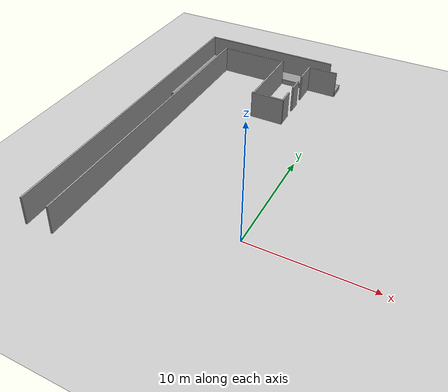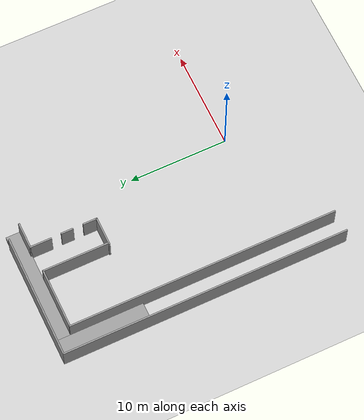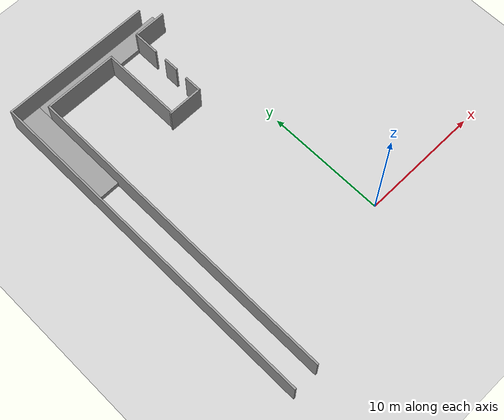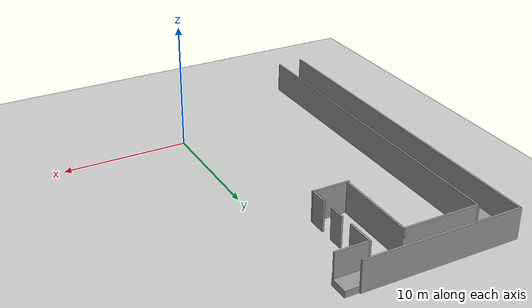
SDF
<sdf version="1.6">
 <world name="default">
  <model name="ground_plane">
   <static>1</static>
   <link name="link">
    <collision name="collision">
     <geometry><plane><normal>0 0 1</normal><size>100 100</size></plane></geometry>
     <surface><friction><ode><mu>100</mu><mu2>50</mu2></ode></friction></surface>
    </collision>
    <visual name="visual">
     <cast_shadows>0</cast_shadows>
     <geometry><plane><normal>0 0 1</normal><size>100 100</size></plane></geometry>
     <material>
      <script><uri>file://media/materials/scripts/gazebo.material</uri><name>Gazebo/Grey</name></script>
     </material>
    </visual>
   </link>
  </model>
  <model name="HRI_MAP">
   <pose>-5.86756 7.56266 0 0 -0 0</pose>
   <link name="Stairs_6">
    <visual name="Stairs_6_Visual_0">
     <pose>-7.41654 11.2877 0.25 0 -0 0</pose>
     <geometry><box><size>2.21745 8.93941 0.5</size></box></geometry>
     <material>
      <script><uri>file://media/materials/scripts/gazebo.material</uri><name>Gazebo/Grey</name></script>
      <ambient>1 1 1 1</ambient>
     </material>
    </visual>
    <collision name="Stairs_6_Collision_0">
     <geometry><box><size>2.21745 8.93941 0.5</size></box></geometry>
     <pose>-7.41654 11.2877 0.25 0 -0 0</pose>
    </collision>
   </link>
   <link name="Stairs_8">
    <visual name="Stairs_8_Visual_0">
     <pose>-0.516707 15.0306 0.25 0 -0 0</pose>
     <geometry><box><size>11.616 1.524 0.5</size></box></geometry>
     <material>
      <script><uri>file://media/materials/scripts/gazebo.material</uri><name>Gazebo/Grey</name></script>
      <ambient>1 1 1 1</ambient>
     </material>
    </visual>
    <collision name="Stairs_8_Collision_0">
     <geometry><box><size>11.616 1.524 0.5</size></box></geometry>
     <pose>-0.516707 15.0306 0.25 0 -0 0</pose>
    </collision>
   </link>
   <link name="Wall_25">
    <collision name="Wall_25_Collision">
     <geometry><box><size>29.25 0.15 2.5</size></box></geometry>
     <pose>0 0 1.25 0 -0 0</pose>
    </collision>
    <visual name="Wall_25_Visual">
     <pose>0 0 1.25 0 -0 0</pose>
     <geometry><box><size>29.25 0.15 2.5</size></box></geometry>
     <material>
      <script><uri>file://media/materials/scripts/gazebo.material</uri><name>Gazebo/Grey</name></script>
      <ambient>1 1 1 1</ambient>
     </material>
    </visual>
    <pose>-8.49624 1.26988 0 0 -0 1.5708</pose>
   </link>
   <link name="Wall_27">
    <collision name="Wall_27_Collision">
     <geometry><box><size>27.5 0.15 2.5</size></box></geometry>
     <pose>0 0 1.25 0 -0 0</pose>
    </collision>
    <visual name="Wall_27_Visual">
     <pose>0 0 1.25 0 -0 0</pose>
     <geometry><box><size>27.5 0.15 2.5</size></box></geometry>
     <material>
      <script><uri>file://media/materials/scripts/gazebo.material</uri><name>Gazebo/Grey</name></script>
      <ambient>1 1 1 1</ambient>
     </material>
    </visual>
    <pose>-6.25376 0.512244 0 0 -0 1.5708</pose>
   </link>
   <link name="Wall_29">
    <collision name="Wall_29_Collision">
     <geometry><box><size>6.25 0.15 2.5</size></box></geometry>
     <pose>0 0 1.25 0 -0 0</pose>
    </collision>
    <visual name="Wall_29_Visual">
     <pose>0 0 1.25 0 -0 0</pose>
     <geometry><box><size>6.25 0.15 2.5</size></box></geometry>
     <material>
      <script><uri>file://media/materials/scripts/gazebo.material</uri><name>Gazebo/Grey</name></script>
      <ambient>1 1 1 1</ambient>
     </material>
    </visual>
    <pose>-3.20376 14.1872 0 0 -0 0</pose>
   </link>
   <link name="Wall_30">
    <collision name="Wall_30_Collision">
     <geometry><box><size>6.75 0.15 2.5</size></box></geometry>
     <pose>0 0 1.25 0 -0 0</pose>
    </collision>
    <visual name="Wall_30_Visual">
     <pose>0 0 1.25 0 -0 0</pose>
     <geometry><box><size>6.75 0.15 2.5</size></box></geometry>
     <material>
      <script><uri>file://media/materials/scripts/gazebo.material</uri><name>Gazebo/Grey</name></script>
      <ambient>1 1 1 1</ambient>
     </material>
    </visual>
    <pose>-0.153764 10.8872 0 0 0 -1.5708</pose>
   </link>
   <link name="Wall_32">
    <collision name="Wall_32_Collision">
     <geometry><box><size>12.75 0.15 2.5</size></box></geometry>
     <pose>0 0 1.25 0 -0 0</pose>
    </collision>
    <visual name="Wall_32_Visual">
     <pose>0 0 1.25 0 -0 0</pose>
     <geometry><box><size>12.75 0.15 2.5</size></box></geometry>
     <material>
      <script><uri>file://media/materials/scripts/gazebo.material</uri><name>Gazebo/Grey</name></script>
      <ambient>1 1 1 1</ambient>
     </material>
    </visual>
    <pose>-2.19624 15.8199 0 0 -0 0</pose>
   </link>
   <link name="Wall_34">
    <collision name="Wall_34_Collision">
     <geometry><box><size>2.25 0.15 2.5</size></box></geometry>
     <pose>0 0 1.25 0 -0 0</pose>
    </collision>
    <visual name="Wall_34_Visual">
     <pose>0 0 1.25 0 -0 0</pose>
     <geometry><box><size>2.25 0.15 2.5</size></box></geometry>
     <material>
      <script><uri>file://media/materials/scripts/gazebo.material</uri><name>Gazebo/Grey</name></script>
      <ambient>1 1 1 1</ambient>
     </material>
    </visual>
    <pose>2.5624 13.2711 0 0 0 -1.5708</pose>
   </link>
   <link name="Wall_36">
    <collision name="Wall_36_Collision">
     <geometry><box><size>1.25 0.15 2.5</size></box></geometry>
     <pose>0 0 1.25 0 -0 0</pose>
    </collision>
    <visual name="Wall_36_Visual">
     <pose>0 0 1.25 0 -0 0</pose>
     <geometry><box><size>1.25 0.15 2.5</size></box></geometry>
     <material>
      <script><uri>file://media/materials/scripts/gazebo.material</uri><name>Gazebo/Grey</name></script>
      <ambient>1 1 1 1</ambient>
     </material>
    </visual>
    <pose>2.60263 10.5329 0 0 0 -1.5708</pose>
   </link>
   <link name="Wall_38">
    <collision name="Wall_38_Collision">
     <geometry><box><size>1.5 0.15 2.5</size></box></geometry>
     <pose>0 0 1.25 0 -0 0</pose>
    </collision>
    <visual name="Wall_38_Visual">
     <pose>0 0 1.25 0 -0 0</pose>
     <geometry><box><size>1.5 0.15 2.5</size></box></geometry>
     <material>
      <script><uri>file://media/materials/scripts/gazebo.material</uri><name>Gazebo/Grey</name></script>
      <ambient>1 1 1 1</ambient>
     </material>
    </visual>
    <pose>2.60263 8.15514 0 0 0 -1.5708</pose>
   </link>
   <link name="Wall_39">
    <collision name="Wall_39_Collision">
     <geometry><box><size>3 0.15 2.5</size></box></geometry>
     <pose>0 0 1.25 0 -0 0</pose>
    </collision>
    <visual name="Wall_39_Visual">
     <pose>0 0 1.25 0 -0 0</pose>
     <geometry><box><size>3 0.15 2.5</size></box></geometry>
     <material>
      <script><uri>file://media/materials/scripts/gazebo.material</uri><name>Gazebo/Grey</name></script>
      <ambient>1 1 1 1</ambient>
     </material>
    </visual>
    <pose>1.17763 7.48014 0 0 -0 3.14159</pose>
   </link>
   <link name="Wall_41">
    <collision name="Wall_41_Collision">
     <geometry><box><size>2.75 0.15 2.5</size></box></geometry>
     <pose>0 0 1.25 0 -0 0</pose>
    </collision>
    <visual name="Wall_41_Visual">
     <pose>0 0 1.25 0 -0 0</pose>
     <geometry><box><size>2.75 0.15 2.5</size></box></geometry>
     <material>
      <script><uri>file://media/materials/scripts/gazebo.material</uri><name>Gazebo/Grey</name></script>
      <ambient>1 1 1 1</ambient>
     </material>
    </visual>
    <pose>3.8624 14.3211 0 0 -0 0</pose>
   </link>
   <static>1</static>
  </model>
 </world>
</sdf>
